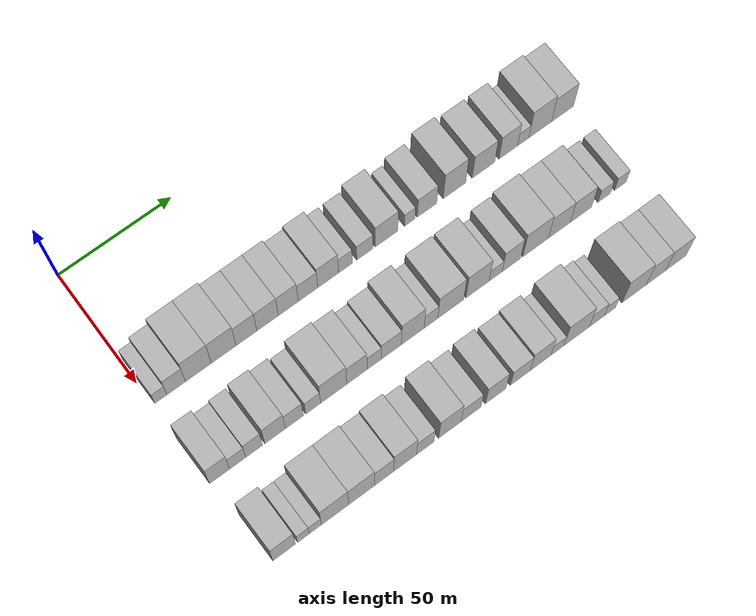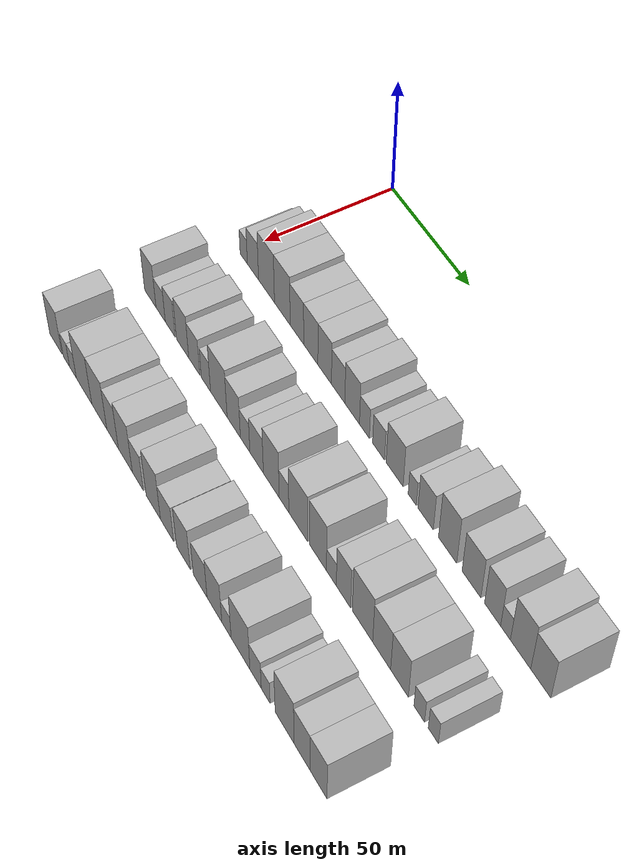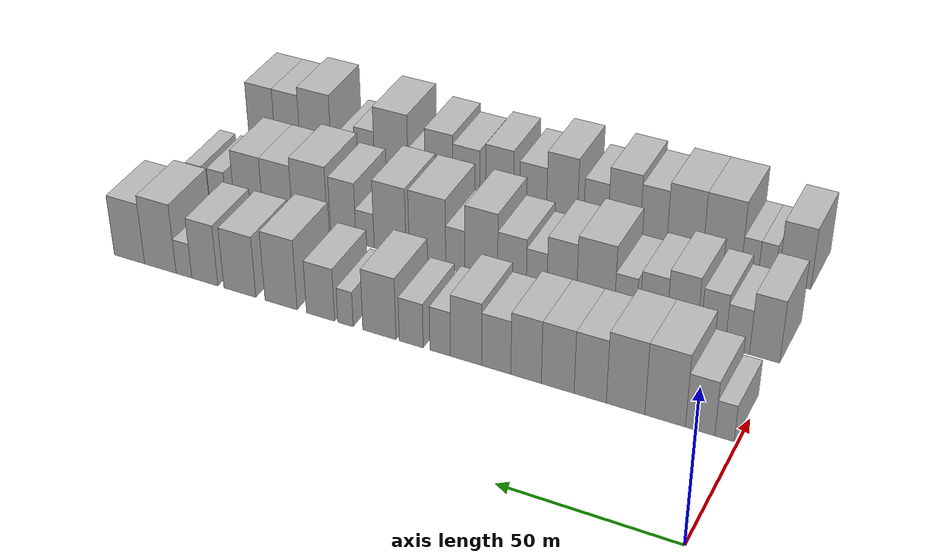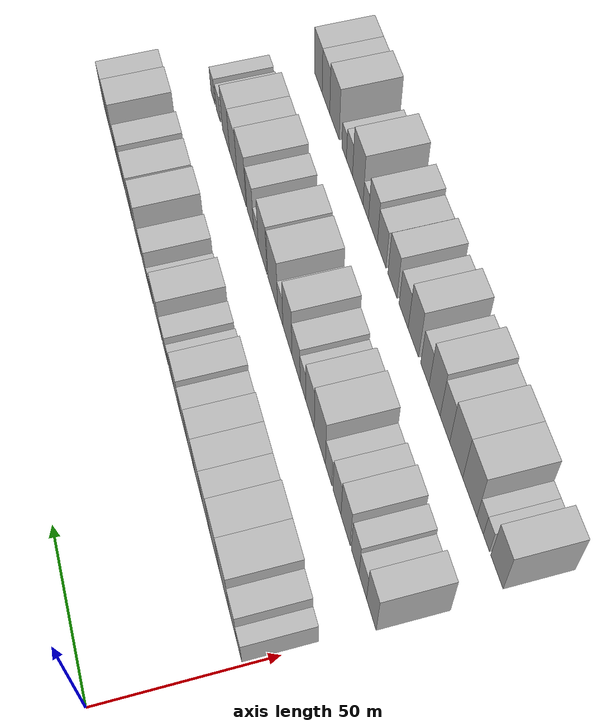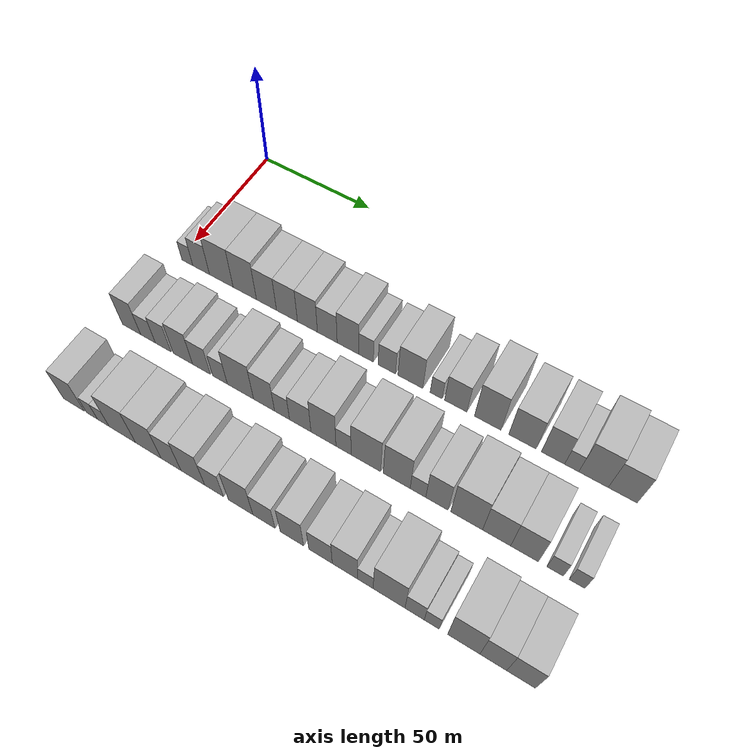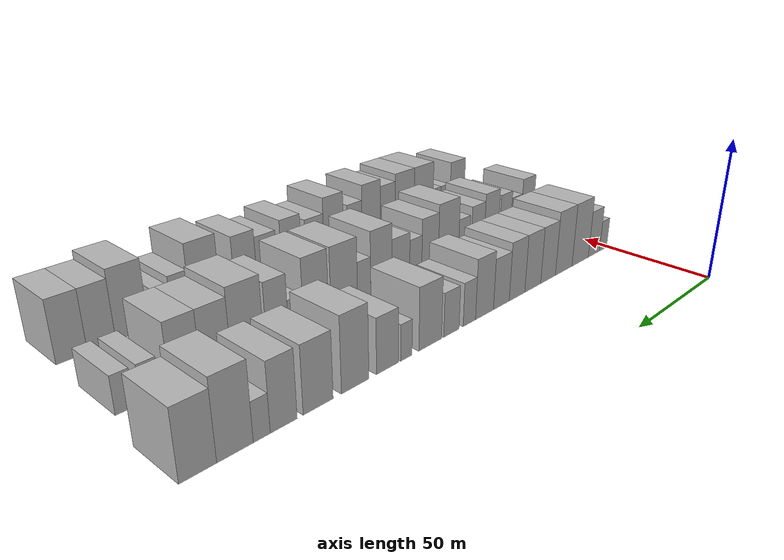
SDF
<sdf version="1.6">
 <world name="default">
  <model name="building_40">
   <static>1</static>
   <pose>50.0000 3.6072 0 0.000000 0.000000 0.000000</pose>
   <link name="link">
    <pose>0 0 6.00 0 0 0</pose>
    <collision name="collision"><geometry><box><size>20.0000 5.2352 12.0000</size></box></geometry></collision>
    <visual name="visual">
     <cast_shadows>0</cast_shadows>
     <geometry><box><size>20.0000 5.2352 12.0000</size></box></geometry>
     <material>
      <script>
       <uri>model://HANNAS_wall/materials/scripts</uri>
       <uri>model://HANNAS_wall/materials/textures</uri>
       <name>vrc/HANNAS_wall</name>
      </script>
     </material>
    </visual>
   </link>
  </model>
  <model name="building_41">
   <static>1</static>
   <pose>50.0000 10.2291 0 0.000000 0.000000 0.000000</pose>
   <link name="link">
    <pose>0 0 9.00 0 0 0</pose>
    <collision name="collision"><geometry><box><size>20.0000 8.0086 18.0000</size></box></geometry></collision>
    <visual name="visual">
     <cast_shadows>0</cast_shadows>
     <geometry><box><size>20.0000 8.0086 18.0000</size></box></geometry>
     <material>
      <script>
       <uri>model://HANNAS_wall/materials/scripts</uri>
       <uri>model://HANNAS_wall/materials/textures</uri>
       <name>vrc/HANNAS_wall</name>
      </script>
     </material>
    </visual>
   </link>
  </model>
  <model name="building_42">
   <static>1</static>
   <pose>50.0000 19.8303 0 0.000000 0.000000 0.000000</pose>
   <link name="link">
    <pose>0 0 12.00 0 0 0</pose>
    <collision name="collision"><geometry><box><size>20.0000 11.1937 24.0000</size></box></geometry></collision>
    <visual name="visual">
     <cast_shadows>0</cast_shadows>
     <geometry><box><size>20.0000 11.1937 24.0000</size></box></geometry>
     <material>
      <script>
       <uri>model://HANNAS_wall/materials/scripts</uri>
       <uri>model://HANNAS_wall/materials/textures</uri>
       <name>vrc/HANNAS_wall</name>
      </script>
     </material>
    </visual>
   </link>
  </model>
  <model name="building_43">
   <static>1</static>
   <pose>50.0000 30.8381 0 0.000000 0.000000 0.000000</pose>
   <link name="link">
    <pose>0 0 12.00 0 0 0</pose>
    <collision name="collision"><geometry><box><size>20.0000 10.8220 24.0000</size></box></geometry></collision>
    <visual name="visual">
     <cast_shadows>0</cast_shadows>
     <geometry><box><size>20.0000 10.8220 24.0000</size></box></geometry>
     <material>
      <script>
       <uri>model://HANNAS_wall/materials/scripts</uri>
       <uri>model://HANNAS_wall/materials/textures</uri>
       <name>vrc/HANNAS_wall</name>
      </script>
     </material>
    </visual>
   </link>
  </model>
  <model name="building_44">
   <static>1</static>
   <pose>50.0000 40.8230 0 0.000000 0.000000 0.000000</pose>
   <link name="link">
    <pose>0 0 10.50 0 0 0</pose>
    <collision name="collision"><geometry><box><size>20.0000 9.1479 21.0000</size></box></geometry></collision>
    <visual name="visual">
     <cast_shadows>0</cast_shadows>
     <geometry><box><size>20.0000 9.1479 21.0000</size></box></geometry>
     <material>
      <script>
       <uri>model://HANNAS_wall/materials/scripts</uri>
       <uri>model://HANNAS_wall/materials/textures</uri>
       <name>vrc/HANNAS_wall</name>
      </script>
     </material>
    </visual>
   </link>
  </model>
  <model name="building_45">
   <static>1</static>
   <pose>50.0000 50.1127 0 0.000000 0.000000 0.000000</pose>
   <link name="link">
    <pose>0 0 10.50 0 0 0</pose>
    <collision name="collision"><geometry><box><size>20.0000 9.4315 21.0000</size></box></geometry></collision>
    <visual name="visual">
     <cast_shadows>0</cast_shadows>
     <geometry><box><size>20.0000 9.4315 21.0000</size></box></geometry>
     <material>
      <script>
       <uri>model://HANNAS_wall/materials/scripts</uri>
       <uri>model://HANNAS_wall/materials/textures</uri>
       <name>vrc/HANNAS_wall</name>
      </script>
     </material>
    </visual>
   </link>
  </model>
  <model name="building_46">
   <static>1</static>
   <pose>50.0000 59.2655 0 0.000000 0.000000 0.000000</pose>
   <link name="link">
    <pose>0 0 10.50 0 0 0</pose>
    <collision name="collision"><geometry><box><size>20.0000 8.8740 21.0000</size></box></geometry></collision>
    <visual name="visual">
     <cast_shadows>0</cast_shadows>
     <geometry><box><size>20.0000 8.8740 21.0000</size></box></geometry>
     <material>
      <script>
       <uri>model://HANNAS_wall/materials/scripts</uri>
       <uri>model://HANNAS_wall/materials/textures</uri>
       <name>vrc/HANNAS_wall</name>
      </script>
     </material>
    </visual>
   </link>
  </model>
  <model name="building_47">
   <static>1</static>
   <pose>50.0000 68.0115 0 0.000000 0.000000 0.000000</pose>
   <link name="link">
    <pose>0 0 9.00 0 0 0</pose>
    <collision name="collision"><geometry><box><size>20.0000 8.6180 18.0000</size></box></geometry></collision>
    <visual name="visual">
     <cast_shadows>0</cast_shadows>
     <geometry><box><size>20.0000 8.6180 18.0000</size></box></geometry>
     <material>
      <script>
       <uri>model://HANNAS_wall/materials/scripts</uri>
       <uri>model://HANNAS_wall/materials/textures</uri>
       <name>vrc/HANNAS_wall</name>
      </script>
     </material>
    </visual>
   </link>
  </model>
  <model name="building_48">
   <static>1</static>
   <pose>50.0000 76.9792 0 0.000000 0.000000 0.000000</pose>
   <link name="link">
    <pose>0 0 10.50 0 0 0</pose>
    <collision name="collision"><geometry><box><size>20.0000 9.3174 21.0000</size></box></geometry></collision>
    <visual name="visual">
     <cast_shadows>0</cast_shadows>
     <geometry><box><size>20.0000 9.3174 21.0000</size></box></geometry>
     <material>
      <script>
       <uri>model://HANNAS_wall/materials/scripts</uri>
       <uri>model://HANNAS_wall/materials/textures</uri>
       <name>vrc/HANNAS_wall</name>
      </script>
     </material>
    </visual>
   </link>
  </model>
  <model name="building_49">
   <static>1</static>
   <pose>50.0000 84.7378 0 0.000000 0.000000 0.000000</pose>
   <link name="link">
    <pose>0 0 7.50 0 0 0</pose>
    <collision name="collision"><geometry><box><size>20.0000 6.1998 15.0000</size></box></geometry></collision>
    <visual name="visual">
     <cast_shadows>0</cast_shadows>
     <geometry><box><size>20.0000 6.1998 15.0000</size></box></geometry>
     <material>
      <script>
       <uri>model://HANNAS_wall/materials/scripts</uri>
       <uri>model://HANNAS_wall/materials/textures</uri>
       <name>vrc/HANNAS_wall</name>
      </script>
     </material>
    </visual>
   </link>
  </model>
  <model name="building_50">
   <static>1</static>
   <pose>50.0000 93.4999 0 0.000000 0.000000 0.000000</pose>
   <link name="link">
    <pose>0 0 7.50 0 0 0</pose>
    <collision name="collision"><geometry><box><size>20.0000 7.3244 15.0000</size></box></geometry></collision>
    <visual name="visual">
     <cast_shadows>0</cast_shadows>
     <geometry><box><size>20.0000 7.3244 15.0000</size></box></geometry>
     <material>
      <script>
       <uri>model://HANNAS_wall/materials/scripts</uri>
       <uri>model://HANNAS_wall/materials/textures</uri>
       <name>vrc/HANNAS_wall</name>
      </script>
     </material>
    </visual>
   </link>
  </model>
  <model name="building_51">
   <static>1</static>
   <pose>50.0000 103.2994 0 0.000000 0.000000 0.000000</pose>
   <link name="link">
    <pose>0 0 10.50 0 0 0</pose>
    <collision name="collision"><geometry><box><size>20.0000 10.2746 21.0000</size></box></geometry></collision>
    <visual name="visual">
     <cast_shadows>0</cast_shadows>
     <geometry><box><size>20.0000 10.2746 21.0000</size></box></geometry>
     <material>
      <script>
       <uri>model://HANNAS_wall/materials/scripts</uri>
       <uri>model://HANNAS_wall/materials/textures</uri>
       <name>vrc/HANNAS_wall</name>
      </script>
     </material>
    </visual>
   </link>
  </model>
  <model name="building_52">
   <static>1</static>
   <pose>50.0000 113.8541 0 0.000000 0.000000 0.000000</pose>
   <link name="link">
    <pose>0 0 6.00 0 0 0</pose>
    <collision name="collision"><geometry><box><size>20.0000 4.8348 12.0000</size></box></geometry></collision>
    <visual name="visual">
     <cast_shadows>0</cast_shadows>
     <geometry><box><size>20.0000 4.8348 12.0000</size></box></geometry>
     <material>
      <script>
       <uri>model://HANNAS_wall/materials/scripts</uri>
       <uri>model://HANNAS_wall/materials/textures</uri>
       <name>vrc/HANNAS_wall</name>
      </script>
     </material>
    </visual>
   </link>
  </model>
  <model name="building_53">
   <static>1</static>
   <pose>50.0000 121.7305 0 0.000000 0.000000 0.000000</pose>
   <link name="link">
    <pose>0 0 9.00 0 0 0</pose>
    <collision name="collision"><geometry><box><size>20.0000 8.9180 18.0000</size></box></geometry></collision>
    <visual name="visual">
     <cast_shadows>0</cast_shadows>
     <geometry><box><size>20.0000 8.9180 18.0000</size></box></geometry>
     <material>
      <script>
       <uri>model://HANNAS_wall/materials/scripts</uri>
       <uri>model://HANNAS_wall/materials/textures</uri>
       <name>vrc/HANNAS_wall</name>
      </script>
     </material>
    </visual>
   </link>
  </model>
  <model name="building_54">
   <static>1</static>
   <pose>50.0000 134.3814 0 0.000000 0.000000 0.000000</pose>
   <link name="link">
    <pose>0 0 12.00 0 0 0</pose>
    <collision name="collision"><geometry><box><size>20.0000 10.3839 24.0000</size></box></geometry></collision>
    <visual name="visual">
     <cast_shadows>0</cast_shadows>
     <geometry><box><size>20.0000 10.3839 24.0000</size></box></geometry>
     <material>
      <script>
       <uri>model://HANNAS_wall/materials/scripts</uri>
       <uri>model://HANNAS_wall/materials/textures</uri>
       <name>vrc/HANNAS_wall</name>
      </script>
     </material>
    </visual>
   </link>
  </model>
  <model name="building_55">
   <static>1</static>
   <pose>50.0000 147.8057 0 0.000000 0.000000 0.000000</pose>
   <link name="link">
    <pose>0 0 10.50 0 0 0</pose>
    <collision name="collision"><geometry><box><size>20.0000 10.4646 21.0000</size></box></geometry></collision>
    <visual name="visual">
     <cast_shadows>0</cast_shadows>
     <geometry><box><size>20.0000 10.4646 21.0000</size></box></geometry>
     <material>
      <script>
       <uri>model://HANNAS_wall/materials/scripts</uri>
       <uri>model://HANNAS_wall/materials/textures</uri>
       <name>vrc/HANNAS_wall</name>
      </script>
     </material>
    </visual>
   </link>
  </model>
  <model name="building_56">
   <static>1</static>
   <pose>50.0000 159.3884 0 0.000000 0.000000 0.000000</pose>
   <link name="link">
    <pose>0 0 10.50 0 0 0</pose>
    <collision name="collision"><geometry><box><size>20.0000 8.7009 21.0000</size></box></geometry></collision>
    <visual name="visual">
     <cast_shadows>0</cast_shadows>
     <geometry><box><size>20.0000 8.7009 21.0000</size></box></geometry>
     <material>
      <script>
       <uri>model://HANNAS_wall/materials/scripts</uri>
       <uri>model://HANNAS_wall/materials/textures</uri>
       <name>vrc/HANNAS_wall</name>
      </script>
     </material>
    </visual>
   </link>
  </model>
  <model name="building_57">
   <static>1</static>
   <pose>50.0000 166.3674 0 0.000000 0.000000 0.000000</pose>
   <link name="link">
    <pose>0 0 6.00 0 0 0</pose>
    <collision name="collision"><geometry><box><size>20.0000 5.2570 12.0000</size></box></geometry></collision>
    <visual name="visual">
     <cast_shadows>0</cast_shadows>
     <geometry><box><size>20.0000 5.2570 12.0000</size></box></geometry>
     <material>
      <script>
       <uri>model://HANNAS_wall/materials/scripts</uri>
       <uri>model://HANNAS_wall/materials/textures</uri>
       <name>vrc/HANNAS_wall</name>
      </script>
     </material>
    </visual>
   </link>
  </model>
  <model name="building_58">
   <static>1</static>
   <pose>50.0000 174.3612 0 0.000000 0.000000 0.000000</pose>
   <link name="link">
    <pose>0 0 12.00 0 0 0</pose>
    <collision name="collision"><geometry><box><size>20.0000 10.7307 24.0000</size></box></geometry></collision>
    <visual name="visual">
     <cast_shadows>0</cast_shadows>
     <geometry><box><size>20.0000 10.7307 24.0000</size></box></geometry>
     <material>
      <script>
       <uri>model://HANNAS_wall/materials/scripts</uri>
       <uri>model://HANNAS_wall/materials/textures</uri>
       <name>vrc/HANNAS_wall</name>
      </script>
     </material>
    </visual>
   </link>
  </model>
  <model name="building_59">
   <static>1</static>
   <pose>50.0000 184.9248 0 0.000000 0.000000 0.000000</pose>
   <link name="link">
    <pose>0 0 10.50 0 0 0</pose>
    <collision name="collision"><geometry><box><size>20.0000 10.3965 21.0000</size></box></geometry></collision>
    <visual name="visual">
     <cast_shadows>0</cast_shadows>
     <geometry><box><size>20.0000 10.3965 21.0000</size></box></geometry>
     <material>
      <script>
       <uri>model://HANNAS_wall/materials/scripts</uri>
       <uri>model://HANNAS_wall/materials/textures</uri>
       <name>vrc/HANNAS_wall</name>
      </script>
     </material>
    </visual>
   </link>
  </model>
  <model name="building_117">
   <static>1</static>
   <pose>85.0000 4.1799 0 0.000000 0.000000 0.000000</pose>
   <link name="link">
    <pose>0 0 10.50 0 0 0</pose>
    <collision name="collision"><geometry><box><size>20.0000 8.5720 21.0000</size></box></geometry></collision>
    <visual name="visual">
     <cast_shadows>0</cast_shadows>
     <geometry><box><size>20.0000 8.5720 21.0000</size></box></geometry>
     <material>
      <script>
       <uri>model://HANNAS_wall/materials/scripts</uri>
       <uri>model://HANNAS_wall/materials/textures</uri>
       <name>vrc/HANNAS_wall</name>
      </script>
     </material>
    </visual>
   </link>
  </model>
  <model name="building_118">
   <static>1</static>
   <pose>85.0000 11.9170 0 0.000000 0.000000 0.000000</pose>
   <link name="link">
    <pose>0 0 7.50 0 0 0</pose>
    <collision name="collision"><geometry><box><size>20.0000 6.9021 15.0000</size></box></geometry></collision>
    <visual name="visual">
     <cast_shadows>0</cast_shadows>
     <geometry><box><size>20.0000 6.9021 15.0000</size></box></geometry>
     <material>
      <script>
       <uri>model://HANNAS_wall/materials/scripts</uri>
       <uri>model://HANNAS_wall/materials/textures</uri>
       <name>vrc/HANNAS_wall</name>
      </script>
     </material>
    </visual>
   </link>
  </model>
  <model name="building_119">
   <static>1</static>
   <pose>85.0000 18.9825 0 0.000000 0.000000 0.000000</pose>
   <link name="link">
    <pose>0 0 9.00 0 0 0</pose>
    <collision name="collision"><geometry><box><size>20.0000 7.2289 18.0000</size></box></geometry></collision>
    <visual name="visual">
     <cast_shadows>0</cast_shadows>
     <geometry><box><size>20.0000 7.2289 18.0000</size></box></geometry>
     <material>
      <script>
       <uri>model://HANNAS_wall/materials/scripts</uri>
       <uri>model://HANNAS_wall/materials/textures</uri>
       <name>vrc/HANNAS_wall</name>
      </script>
     </material>
    </visual>
   </link>
  </model>
  <model name="building_120">
   <static>1</static>
   <pose>85.0000 28.0159 0 0.000000 0.000000 0.000000</pose>
   <link name="link">
    <pose>0 0 10.50 0 0 0</pose>
    <collision name="collision"><geometry><box><size>20.0000 8.8378 21.0000</size></box></geometry></collision>
    <visual name="visual">
     <cast_shadows>0</cast_shadows>
     <geometry><box><size>20.0000 8.8378 21.0000</size></box></geometry>
     <material>
      <script>
       <uri>model://HANNAS_wall/materials/scripts</uri>
       <uri>model://HANNAS_wall/materials/textures</uri>
       <name>vrc/HANNAS_wall</name>
      </script>
     </material>
    </visual>
   </link>
  </model>
  <model name="building_121">
   <static>1</static>
   <pose>85.0000 36.4065 0 0.000000 0.000000 0.000000</pose>
   <link name="link">
    <pose>0 0 9.00 0 0 0</pose>
    <collision name="collision"><geometry><box><size>20.0000 7.9435 18.0000</size></box></geometry></collision>
    <visual name="visual">
     <cast_shadows>0</cast_shadows>
     <geometry><box><size>20.0000 7.9435 18.0000</size></box></geometry>
     <material>
      <script>
       <uri>model://HANNAS_wall/materials/scripts</uri>
       <uri>model://HANNAS_wall/materials/textures</uri>
       <name>vrc/HANNAS_wall</name>
      </script>
     </material>
    </visual>
   </link>
  </model>
  <model name="building_122">
   <static>1</static>
   <pose>85.0000 44.6299 0 0.000000 0.000000 0.000000</pose>
   <link name="link">
    <pose>0 0 7.50 0 0 0</pose>
    <collision name="collision"><geometry><box><size>20.0000 6.5034 15.0000</size></box></geometry></collision>
    <visual name="visual">
     <cast_shadows>0</cast_shadows>
     <geometry><box><size>20.0000 6.5034 15.0000</size></box></geometry>
     <material>
      <script>
       <uri>model://HANNAS_wall/materials/scripts</uri>
       <uri>model://HANNAS_wall/materials/textures</uri>
       <name>vrc/HANNAS_wall</name>
      </script>
     </material>
    </visual>
   </link>
  </model>
  <model name="building_123">
   <static>1</static>
   <pose>85.0000 53.6020 0 0.000000 0.000000 0.000000</pose>
   <link name="link">
    <pose>0 0 12.00 0 0 0</pose>
    <collision name="collision"><geometry><box><size>20.0000 11.4407 24.0000</size></box></geometry></collision>
    <visual name="visual">
     <cast_shadows>0</cast_shadows>
     <geometry><box><size>20.0000 11.4407 24.0000</size></box></geometry>
     <material>
      <script>
       <uri>model://HANNAS_wall/materials/scripts</uri>
       <uri>model://HANNAS_wall/materials/textures</uri>
       <name>vrc/HANNAS_wall</name>
      </script>
     </material>
    </visual>
   </link>
  </model>
  <model name="building_124">
   <static>1</static>
   <pose>85.0000 63.8164 0 0.000000 0.000000 0.000000</pose>
   <link name="link">
    <pose>0 0 10.50 0 0 0</pose>
    <collision name="collision"><geometry><box><size>20.0000 8.9883 21.0000</size></box></geometry></collision>
    <visual name="visual">
     <cast_shadows>0</cast_shadows>
     <geometry><box><size>20.0000 8.9883 21.0000</size></box></geometry>
     <material>
      <script>
       <uri>model://HANNAS_wall/materials/scripts</uri>
       <uri>model://HANNAS_wall/materials/textures</uri>
       <name>vrc/HANNAS_wall</name>
      </script>
     </material>
    </visual>
   </link>
  </model>
  <model name="building_125">
   <static>1</static>
   <pose>85.0000 71.4733 0 0.000000 0.000000 0.000000</pose>
   <link name="link">
    <pose>0 0 7.50 0 0 0</pose>
    <collision name="collision"><geometry><box><size>20.0000 6.3255 15.0000</size></box></geometry></collision>
    <visual name="visual">
     <cast_shadows>0</cast_shadows>
     <geometry><box><size>20.0000 6.3255 15.0000</size></box></geometry>
     <material>
      <script>
       <uri>model://HANNAS_wall/materials/scripts</uri>
       <uri>model://HANNAS_wall/materials/textures</uri>
       <name>vrc/HANNAS_wall</name>
      </script>
     </material>
    </visual>
   </link>
  </model>
  <model name="building_126">
   <static>1</static>
   <pose>85.0000 79.0989 0 0.000000 0.000000 0.000000</pose>
   <link name="link">
    <pose>0 0 9.00 0 0 0</pose>
    <collision name="collision"><geometry><box><size>20.0000 8.9257 18.0000</size></box></geometry></collision>
    <visual name="visual">
     <cast_shadows>0</cast_shadows>
     <geometry><box><size>20.0000 8.9257 18.0000</size></box></geometry>
     <material>
      <script>
       <uri>model://HANNAS_wall/materials/scripts</uri>
       <uri>model://HANNAS_wall/materials/textures</uri>
       <name>vrc/HANNAS_wall</name>
      </script>
     </material>
    </visual>
   </link>
  </model>
  <model name="building_127">
   <static>1</static>
   <pose>85.0000 88.6784 0 0.000000 0.000000 0.000000</pose>
   <link name="link">
    <pose>0 0 12.00 0 0 0</pose>
    <collision name="collision"><geometry><box><size>20.0000 10.2333 24.0000</size></box></geometry></collision>
    <visual name="visual">
     <cast_shadows>0</cast_shadows>
     <geometry><box><size>20.0000 10.2333 24.0000</size></box></geometry>
     <material>
      <script>
       <uri>model://HANNAS_wall/materials/scripts</uri>
       <uri>model://HANNAS_wall/materials/textures</uri>
       <name>vrc/HANNAS_wall</name>
      </script>
     </material>
    </visual>
   </link>
  </model>
  <model name="building_128">
   <static>1</static>
   <pose>85.0000 96.8512 0 0.000000 0.000000 0.000000</pose>
   <link name="link">
    <pose>0 0 7.50 0 0 0</pose>
    <collision name="collision"><geometry><box><size>20.0000 6.1123 15.0000</size></box></geometry></collision>
    <visual name="visual">
     <cast_shadows>0</cast_shadows>
     <geometry><box><size>20.0000 6.1123 15.0000</size></box></geometry>
     <material>
      <script>
       <uri>model://HANNAS_wall/materials/scripts</uri>
       <uri>model://HANNAS_wall/materials/textures</uri>
       <name>vrc/HANNAS_wall</name>
      </script>
     </material>
    </visual>
   </link>
  </model>
  <model name="building_129">
   <static>1</static>
   <pose>85.0000 105.7952 0 0.000000 0.000000 0.000000</pose>
   <link name="link">
    <pose>0 0 12.00 0 0 0</pose>
    <collision name="collision"><geometry><box><size>20.0000 11.7757 24.0000</size></box></geometry></collision>
    <visual name="visual">
     <cast_shadows>0</cast_shadows>
     <geometry><box><size>20.0000 11.7757 24.0000</size></box></geometry>
     <material>
      <script>
       <uri>model://HANNAS_wall/materials/scripts</uri>
       <uri>model://HANNAS_wall/materials/textures</uri>
       <name>vrc/HANNAS_wall</name>
      </script>
     </material>
    </visual>
   </link>
  </model>
  <model name="building_130">
   <static>1</static>
   <pose>85.0000 117.9254 0 0.000000 0.000000 0.000000</pose>
   <link name="link">
    <pose>0 0 12.00 0 0 0</pose>
    <collision name="collision"><geometry><box><size>20.0000 10.4849 24.0000</size></box></geometry></collision>
    <visual name="visual">
     <cast_shadows>0</cast_shadows>
     <geometry><box><size>20.0000 10.4849 24.0000</size></box></geometry>
     <material>
      <script>
       <uri>model://HANNAS_wall/materials/scripts</uri>
       <uri>model://HANNAS_wall/materials/textures</uri>
       <name>vrc/HANNAS_wall</name>
      </script>
     </material>
    </visual>
   </link>
  </model>
  <model name="building_131">
   <static>1</static>
   <pose>85.0000 126.1492 0 0.000000 0.000000 0.000000</pose>
   <link name="link">
    <pose>0 0 6.00 0 0 0</pose>
    <collision name="collision"><geometry><box><size>20.0000 5.9626 12.0000</size></box></geometry></collision>
    <visual name="visual">
     <cast_shadows>0</cast_shadows>
     <geometry><box><size>20.0000 5.9626 12.0000</size></box></geometry>
     <material>
      <script>
       <uri>model://HANNAS_wall/materials/scripts</uri>
       <uri>model://HANNAS_wall/materials/textures</uri>
       <name>vrc/HANNAS_wall</name>
      </script>
     </material>
    </visual>
   </link>
  </model>
  <model name="building_132">
   <static>1</static>
   <pose>85.0000 133.3634 0 0.000000 0.000000 0.000000</pose>
   <link name="link">
    <pose>0 0 10.50 0 0 0</pose>
    <collision name="collision"><geometry><box><size>20.0000 8.4659 21.0000</size></box></geometry></collision>
    <visual name="visual">
     <cast_shadows>0</cast_shadows>
     <geometry><box><size>20.0000 8.4659 21.0000</size></box></geometry>
     <material>
      <script>
       <uri>model://HANNAS_wall/materials/scripts</uri>
       <uri>model://HANNAS_wall/materials/textures</uri>
       <name>vrc/HANNAS_wall</name>
      </script>
     </material>
    </visual>
   </link>
  </model>
  <model name="building_133">
   <static>1</static>
   <pose>85.0000 144.5189 0 0.000000 0.000000 0.000000</pose>
   <link name="link">
    <pose>0 0 12.00 0 0 0</pose>
    <collision name="collision"><geometry><box><size>20.0000 11.8450 24.0000</size></box></geometry></collision>
    <visual name="visual">
     <cast_shadows>0</cast_shadows>
     <geometry><box><size>20.0000 11.8450 24.0000</size></box></geometry>
     <material>
      <script>
       <uri>model://HANNAS_wall/materials/scripts</uri>
       <uri>model://HANNAS_wall/materials/textures</uri>
       <name>vrc/HANNAS_wall</name>
      </script>
     </material>
    </visual>
   </link>
  </model>
  <model name="building_134">
   <static>1</static>
   <pose>85.0000 155.5428 0 0.000000 0.000000 0.000000</pose>
   <link name="link">
    <pose>0 0 10.50 0 0 0</pose>
    <collision name="collision"><geometry><box><size>20.0000 10.2028 21.0000</size></box></geometry></collision>
    <visual name="visual">
     <cast_shadows>0</cast_shadows>
     <geometry><box><size>20.0000 10.2028 21.0000</size></box></geometry>
     <material>
      <script>
       <uri>model://HANNAS_wall/materials/scripts</uri>
       <uri>model://HANNAS_wall/materials/textures</uri>
       <name>vrc/HANNAS_wall</name>
      </script>
     </material>
    </visual>
   </link>
  </model>
  <model name="building_135">
   <static>1</static>
   <pose>85.0000 165.5980 0 0.000000 0.000000 0.000000</pose>
   <link name="link">
    <pose>0 0 10.50 0 0 0</pose>
    <collision name="collision"><geometry><box><size>20.0000 9.9078 21.0000</size></box></geometry></collision>
    <visual name="visual">
     <cast_shadows>0</cast_shadows>
     <geometry><box><size>20.0000 9.9078 21.0000</size></box></geometry>
     <material>
      <script>
       <uri>model://HANNAS_wall/materials/scripts</uri>
       <uri>model://HANNAS_wall/materials/textures</uri>
       <name>vrc/HANNAS_wall</name>
      </script>
     </material>
    </visual>
   </link>
  </model>
  <model name="building_136">
   <static>1</static>
   <pose>85.0000 176.4492 0 0.000000 0.000000 0.000000</pose>
   <link name="link">
    <pose>0 0 6.00 0 0 0</pose>
    <collision name="collision"><geometry><box><size>20.0000 5.7945 12.0000</size></box></geometry></collision>
    <visual name="visual">
     <cast_shadows>0</cast_shadows>
     <geometry><box><size>20.0000 5.7945 12.0000</size></box></geometry>
     <material>
      <script>
       <uri>model://HANNAS_wall/materials/scripts</uri>
       <uri>model://HANNAS_wall/materials/textures</uri>
       <name>vrc/HANNAS_wall</name>
      </script>
     </material>
    </visual>
   </link>
  </model>
  <model name="building_137">
   <static>1</static>
   <pose>85.0000 184.0670 0 0.000000 0.000000 0.000000</pose>
   <link name="link">
    <pose>0 0 6.00 0 0 0</pose>
    <collision name="collision"><geometry><box><size>20.0000 5.4410 12.0000</size></box></geometry></collision>
    <visual name="visual">
     <cast_shadows>0</cast_shadows>
     <geometry><box><size>20.0000 5.4410 12.0000</size></box></geometry>
     <material>
      <script>
       <uri>model://HANNAS_wall/materials/scripts</uri>
       <uri>model://HANNAS_wall/materials/textures</uri>
       <name>vrc/HANNAS_wall</name>
      </script>
     </material>
    </visual>
   </link>
  </model>
  <model name="building_200">
   <static>1</static>
   <pose>120.0000 6.5399 0 0.000000 0.000000 0.000000</pose>
   <link name="link">
    <pose>0 0 10.50 0 0 0</pose>
    <collision name="collision"><geometry><box><size>20.0000 9.5893 21.0000</size></box></geometry></collision>
    <visual name="visual">
     <cast_shadows>0</cast_shadows>
     <geometry><box><size>20.0000 9.5893 21.0000</size></box></geometry>
     <material>
      <script>
       <uri>model://HANNAS_wall/materials/scripts</uri>
       <uri>model://HANNAS_wall/materials/textures</uri>
       <name>vrc/HANNAS_wall</name>
      </script>
     </material>
    </visual>
   </link>
  </model>
  <model name="building_201">
   <static>1</static>
   <pose>120.0000 14.8081 0 0.000000 0.000000 0.000000</pose>
   <link name="link">
    <pose>0 0 6.00 0 0 0</pose>
    <collision name="collision"><geometry><box><size>20.0000 4.9471 12.0000</size></box></geometry></collision>
    <visual name="visual">
     <cast_shadows>0</cast_shadows>
     <geometry><box><size>20.0000 4.9471 12.0000</size></box></geometry>
     <material>
      <script>
       <uri>model://HANNAS_wall/materials/scripts</uri>
       <uri>model://HANNAS_wall/materials/textures</uri>
       <name>vrc/HANNAS_wall</name>
      </script>
     </material>
    </visual>
   </link>
  </model>
  <model name="building_202">
   <static>1</static>
   <pose>120.0000 19.8699 0 0.000000 0.000000 0.000000</pose>
   <link name="link">
    <pose>0 0 6.00 0 0 0</pose>
    <collision name="collision"><geometry><box><size>20.0000 5.1765 12.0000</size></box></geometry></collision>
    <visual name="visual">
     <cast_shadows>0</cast_shadows>
     <geometry><box><size>20.0000 5.1765 12.0000</size></box></geometry>
     <material>
      <script>
       <uri>model://HANNAS_wall/materials/scripts</uri>
       <uri>model://HANNAS_wall/materials/textures</uri>
       <name>vrc/HANNAS_wall</name>
      </script>
     </material>
    </visual>
   </link>
  </model>
  <model name="building_203">
   <static>1</static>
   <pose>120.0000 28.3348 0 0.000000 0.000000 0.000000</pose>
   <link name="link">
    <pose>0 0 12.00 0 0 0</pose>
    <collision name="collision"><geometry><box><size>20.0000 11.7533 24.0000</size></box></geometry></collision>
    <visual name="visual">
     <cast_shadows>0</cast_shadows>
     <geometry><box><size>20.0000 11.7533 24.0000</size></box></geometry>
     <material>
      <script>
       <uri>model://HANNAS_wall/materials/scripts</uri>
       <uri>model://HANNAS_wall/materials/textures</uri>
       <name>vrc/HANNAS_wall</name>
      </script>
     </material>
    </visual>
   </link>
  </model>
  <model name="building_204">
   <static>1</static>
   <pose>120.0000 39.7929 0 0.000000 0.000000 0.000000</pose>
   <link name="link">
    <pose>0 0 12.00 0 0 0</pose>
    <collision name="collision"><geometry><box><size>20.0000 11.1629 24.0000</size></box></geometry></collision>
    <visual name="visual">
     <cast_shadows>0</cast_shadows>
     <geometry><box><size>20.0000 11.1629 24.0000</size></box></geometry>
     <material>
      <script>
       <uri>model://HANNAS_wall/materials/scripts</uri>
       <uri>model://HANNAS_wall/materials/textures</uri>
       <name>vrc/HANNAS_wall</name>
      </script>
     </material>
    </visual>
   </link>
  </model>
  <model name="building_205">
   <static>1</static>
   <pose>120.0000 49.5899 0 0.000000 0.000000 0.000000</pose>
   <link name="link">
    <pose>0 0 10.50 0 0 0</pose>
    <collision name="collision"><geometry><box><size>20.0000 8.4311 21.0000</size></box></geometry></collision>
    <visual name="visual">
     <cast_shadows>0</cast_shadows>
     <geometry><box><size>20.0000 8.4311 21.0000</size></box></geometry>
     <material>
      <script>
       <uri>model://HANNAS_wall/materials/scripts</uri>
       <uri>model://HANNAS_wall/materials/textures</uri>
       <name>vrc/HANNAS_wall</name>
      </script>
     </material>
    </visual>
   </link>
  </model>
  <model name="building_206">
   <static>1</static>
   <pose>120.0000 58.8021 0 0.000000 0.000000 0.000000</pose>
   <link name="link">
    <pose>0 0 12.00 0 0 0</pose>
    <collision name="collision"><geometry><box><size>20.0000 9.9931 24.0000</size></box></geometry></collision>
    <visual name="visual">
     <cast_shadows>0</cast_shadows>
     <geometry><box><size>20.0000 9.9931 24.0000</size></box></geometry>
     <material>
      <script>
       <uri>model://HANNAS_wall/materials/scripts</uri>
       <uri>model://HANNAS_wall/materials/textures</uri>
       <name>vrc/HANNAS_wall</name>
      </script>
     </material>
    </visual>
   </link>
  </model>
  <model name="building_207">
   <static>1</static>
   <pose>120.0000 67.6610 0 0.000000 0.000000 0.000000</pose>
   <link name="link">
    <pose>0 0 9.00 0 0 0</pose>
    <collision name="collision"><geometry><box><size>20.0000 7.7247 18.0000</size></box></geometry></collision>
    <visual name="visual">
     <cast_shadows>0</cast_shadows>
     <geometry><box><size>20.0000 7.7247 18.0000</size></box></geometry>
     <material>
      <script>
       <uri>model://HANNAS_wall/materials/scripts</uri>
       <uri>model://HANNAS_wall/materials/textures</uri>
       <name>vrc/HANNAS_wall</name>
      </script>
     </material>
    </visual>
   </link>
  </model>
  <model name="building_208">
   <static>1</static>
   <pose>120.0000 78.4829 0 0.000000 0.000000 0.000000</pose>
   <link name="link">
    <pose>0 0 12.00 0 0 0</pose>
    <collision name="collision"><geometry><box><size>20.0000 9.9193 24.0000</size></box></geometry></collision>
    <visual name="visual">
     <cast_shadows>0</cast_shadows>
     <geometry><box><size>20.0000 9.9193 24.0000</size></box></geometry>
     <material>
      <script>
       <uri>model://HANNAS_wall/materials/scripts</uri>
       <uri>model://HANNAS_wall/materials/textures</uri>
       <name>vrc/HANNAS_wall</name>
      </script>
     </material>
    </visual>
   </link>
  </model>
  <model name="building_209">
   <static>1</static>
   <pose>120.0000 87.8661 0 0.000000 0.000000 0.000000</pose>
   <link name="link">
    <pose>0 0 9.00 0 0 0</pose>
    <collision name="collision"><geometry><box><size>20.0000 8.8470 18.0000</size></box></geometry></collision>
    <visual name="visual">
     <cast_shadows>0</cast_shadows>
     <geometry><box><size>20.0000 8.8470 18.0000</size></box></geometry>
     <material>
      <script>
       <uri>model://HANNAS_wall/materials/scripts</uri>
       <uri>model://HANNAS_wall/materials/textures</uri>
       <name>vrc/HANNAS_wall</name>
      </script>
     </material>
    </visual>
   </link>
  </model>
  <model name="building_210">
   <static>1</static>
   <pose>120.0000 98.8682 0 0.000000 0.000000 0.000000</pose>
   <link name="link">
    <pose>0 0 10.50 0 0 0</pose>
    <collision name="collision"><geometry><box><size>20.0000 9.1572 21.0000</size></box></geometry></collision>
    <visual name="visual">
     <cast_shadows>0</cast_shadows>
     <geometry><box><size>20.0000 9.1572 21.0000</size></box></geometry>
     <material>
      <script>
       <uri>model://HANNAS_wall/materials/scripts</uri>
       <uri>model://HANNAS_wall/materials/textures</uri>
       <name>vrc/HANNAS_wall</name>
      </script>
     </material>
    </visual>
   </link>
  </model>
  <model name="building_211">
   <static>1</static>
   <pose>120.0000 109.9227 0 0.000000 0.000000 0.000000</pose>
   <link name="link">
    <pose>0 0 9.00 0 0 0</pose>
    <collision name="collision"><geometry><box><size>20.0000 8.9518 18.0000</size></box></geometry></collision>
    <visual name="visual">
     <cast_shadows>0</cast_shadows>
     <geometry><box><size>20.0000 8.9518 18.0000</size></box></geometry>
     <material>
      <script>
       <uri>model://HANNAS_wall/materials/scripts</uri>
       <uri>model://HANNAS_wall/materials/textures</uri>
       <name>vrc/HANNAS_wall</name>
      </script>
     </material>
    </visual>
   </link>
  </model>
  <model name="building_212">
   <static>1</static>
   <pose>120.0000 119.0977 0 0.000000 0.000000 0.000000</pose>
   <link name="link">
    <pose>0 0 10.50 0 0 0</pose>
    <collision name="collision"><geometry><box><size>20.0000 9.3982 21.0000</size></box></geometry></collision>
    <visual name="visual">
     <cast_shadows>0</cast_shadows>
     <geometry><box><size>20.0000 9.3982 21.0000</size></box></geometry>
     <material>
      <script>
       <uri>model://HANNAS_wall/materials/scripts</uri>
       <uri>model://HANNAS_wall/materials/textures</uri>
       <name>vrc/HANNAS_wall</name>
      </script>
     </material>
    </visual>
   </link>
  </model>
  <model name="building_213">
   <static>1</static>
   <pose>120.0000 126.7204 0 0.000000 0.000000 0.000000</pose>
   <link name="link">
    <pose>0 0 6.00 0 0 0</pose>
    <collision name="collision"><geometry><box><size>20.0000 5.8471 12.0000</size></box></geometry></collision>
    <visual name="visual">
     <cast_shadows>0</cast_shadows>
     <geometry><box><size>20.0000 5.8471 12.0000</size></box></geometry>
     <material>
      <script>
       <uri>model://HANNAS_wall/materials/scripts</uri>
       <uri>model://HANNAS_wall/materials/textures</uri>
       <name>vrc/HANNAS_wall</name>
      </script>
     </material>
    </visual>
   </link>
  </model>
  <model name="building_214">
   <static>1</static>
   <pose>120.0000 135.4480 0 0.000000 0.000000 0.000000</pose>
   <link name="link">
    <pose>0 0 12.00 0 0 0</pose>
    <collision name="collision"><geometry><box><size>20.0000 11.6081 24.0000</size></box></geometry></collision>
    <visual name="visual">
     <cast_shadows>0</cast_shadows>
     <geometry><box><size>20.0000 11.6081 24.0000</size></box></geometry>
     <material>
      <script>
       <uri>model://HANNAS_wall/materials/scripts</uri>
       <uri>model://HANNAS_wall/materials/textures</uri>
       <name>vrc/HANNAS_wall</name>
      </script>
     </material>
    </visual>
   </link>
  </model>
  <model name="building_215">
   <static>1</static>
   <pose>120.0000 144.6970 0 0.000000 0.000000 0.000000</pose>
   <link name="link">
    <pose>0 0 7.50 0 0 0</pose>
    <collision name="collision"><geometry><box><size>20.0000 6.8898 15.0000</size></box></geometry></collision>
    <visual name="visual">
     <cast_shadows>0</cast_shadows>
     <geometry><box><size>20.0000 6.8898 15.0000</size></box></geometry>
     <material>
      <script>
       <uri>model://HANNAS_wall/materials/scripts</uri>
       <uri>model://HANNAS_wall/materials/textures</uri>
       <name>vrc/HANNAS_wall</name>
      </script>
     </material>
    </visual>
   </link>
  </model>
  <model name="building_216">
   <static>1</static>
   <pose>120.0000 150.7747 0 0.000000 0.000000 0.000000</pose>
   <link name="link">
    <pose>0 0 6.00 0 0 0</pose>
    <collision name="collision"><geometry><box><size>20.0000 5.2656 12.0000</size></box></geometry></collision>
    <visual name="visual">
     <cast_shadows>0</cast_shadows>
     <geometry><box><size>20.0000 5.2656 12.0000</size></box></geometry>
     <material>
      <script>
       <uri>model://HANNAS_wall/materials/scripts</uri>
       <uri>model://HANNAS_wall/materials/textures</uri>
       <name>vrc/HANNAS_wall</name>
      </script>
     </material>
    </visual>
   </link>
  </model>
  <model name="building_217">
   <static>1</static>
   <pose>120.0000 161.9775 0 0.000000 0.000000 0.000000</pose>
   <link name="link">
    <pose>0 0 12.00 0 0 0</pose>
    <collision name="collision"><geometry><box><size>20.0000 11.1400 24.0000</size></box></geometry></collision>
    <visual name="visual">
     <cast_shadows>0</cast_shadows>
     <geometry><box><size>20.0000 11.1400 24.0000</size></box></geometry>
     <material>
      <script>
       <uri>model://HANNAS_wall/materials/scripts</uri>
       <uri>model://HANNAS_wall/materials/textures</uri>
       <name>vrc/HANNAS_wall</name>
      </script>
     </material>
    </visual>
   </link>
  </model>
  <model name="building_218">
   <static>1</static>
   <pose>120.0000 172.1030 0 0.000000 0.000000 0.000000</pose>
   <link name="link">
    <pose>0 0 10.50 0 0 0</pose>
    <collision name="collision"><geometry><box><size>20.0000 9.1110 21.0000</size></box></geometry></collision>
    <visual name="visual">
     <cast_shadows>0</cast_shadows>
     <geometry><box><size>20.0000 9.1110 21.0000</size></box></geometry>
     <material>
      <script>
       <uri>model://HANNAS_wall/materials/scripts</uri>
       <uri>model://HANNAS_wall/materials/textures</uri>
       <name>vrc/HANNAS_wall</name>
      </script>
     </material>
    </visual>
   </link>
  </model>
  <model name="building_219">
   <static>1</static>
   <pose>120.0000 181.4383 0 0.000000 0.000000 0.000000</pose>
   <link name="link">
    <pose>0 0 10.50 0 0 0</pose>
    <collision name="collision"><geometry><box><size>20.0000 9.5596 21.0000</size></box></geometry></collision>
    <visual name="visual">
     <cast_shadows>0</cast_shadows>
     <geometry><box><size>20.0000 9.5596 21.0000</size></box></geometry>
     <material>
      <script>
       <uri>model://HANNAS_wall/materials/scripts</uri>
       <uri>model://HANNAS_wall/materials/textures</uri>
       <name>vrc/HANNAS_wall</name>
      </script>
     </material>
    </visual>
   </link>
  </model>
 </world>
</sdf>
